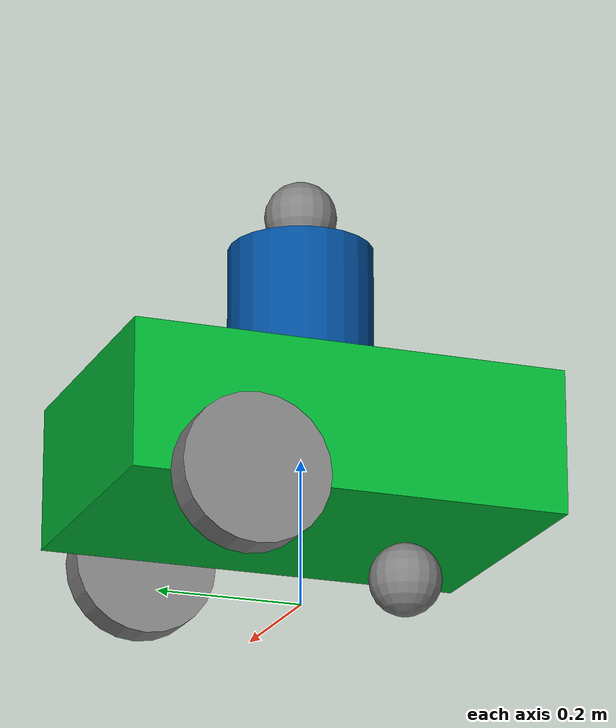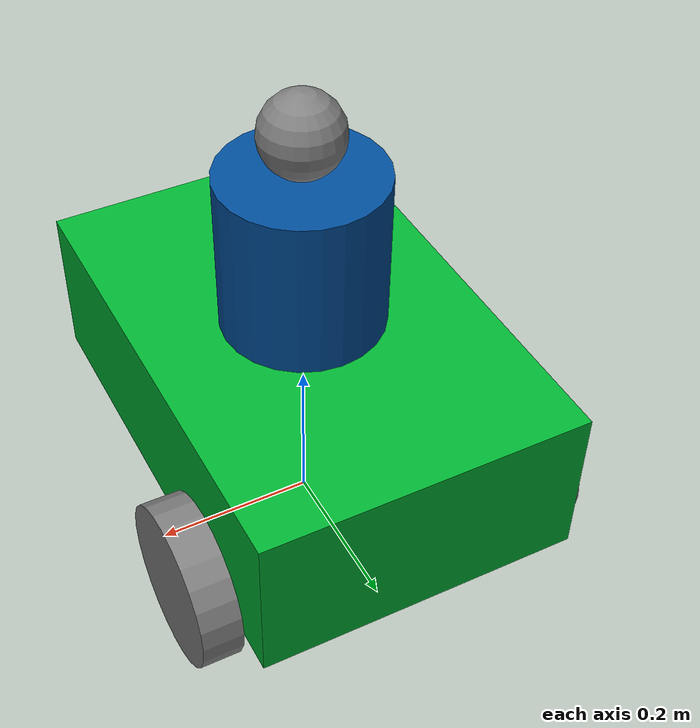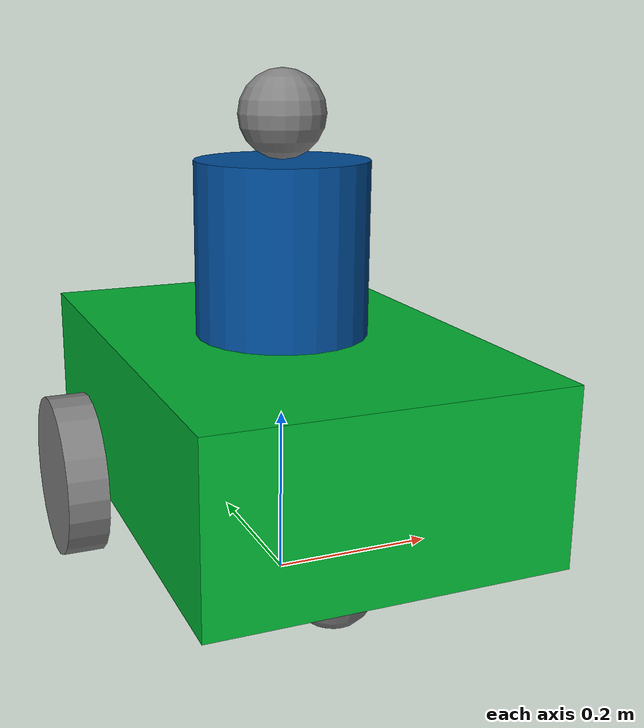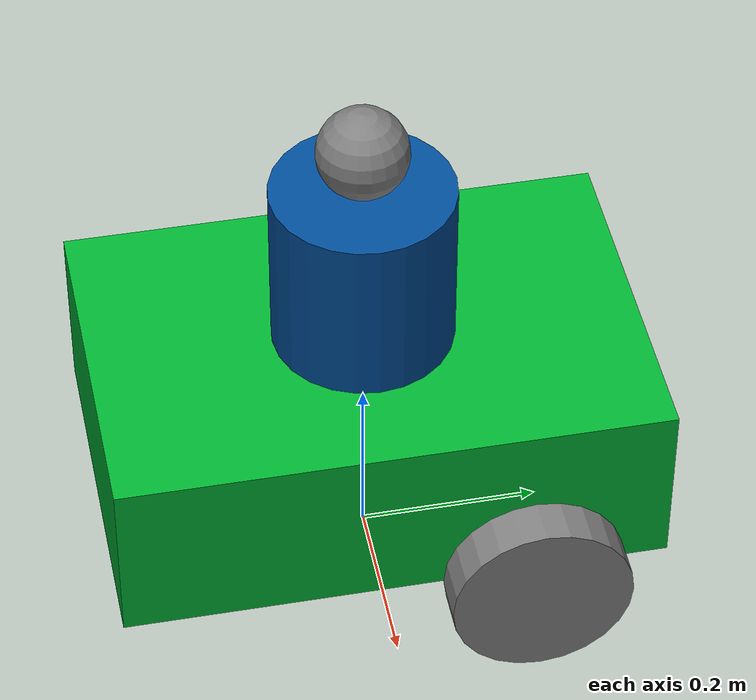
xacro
<?xml version="1.0"?>
<robot name="mobile_robot" xmlns:xacro="http://www.ros.org/wiki/xacro">

    <xacro:include filename="$(find my_robot_description)/urdf/common_properties.urdf.xacro" />
    <xacro:include filename="$(find my_robot_description)/urdf/mobile_base_gazebo.xacro" />

    <xacro:property name="box_size_length" value="0.4" />
    <xacro:property name="box_size_width" value="0.6" />
    <xacro:property name="box_size_height" value="0.2" />
    <xacro:property name="cylinder_radius" value="0.1" />
    <xacro:property name="cylinder_length" value="0.2" />
    <xacro:property name="sphere_radius" value="0.05" />

    <link name="basefoot_link" />

    <link name="base_link">
        <visual>
            <geometry>

                <box size="${box_size_length} ${box_size_width} ${box_size_height}" />

            </geometry>
            <origin xyz="0 0 ${box_size_height/2}" rpy=" 0 0 0" />

            <material name="green" />
        </visual>

        <collision>

            <geometry>

                <box size="${box_size_length} ${box_size_width} ${box_size_height}" />

            </geometry>
            <origin xyz="0 0 ${box_size_height/2}" rpy=" 0 0 0" />

        </collision>

        <xacro:box_inertia mass ="7.0" length="${box_size_length}" width="${box_size_width}" height="${box_size_height}"
                            xyz="0 0 ${box_size_height/2}" rpy="0 0 0" />
    </link>

    <link name="body_link">
        <visual>
            <geometry>

                <cylinder radius="${cylinder_radius}" length="${cylinder_length}" />

            </geometry>

            <origin xyz="0 0 ${cylinder_length/2}" rpy="0 0 0" />

            <material name="blue" />
        </visual>

        <collision>

            <geometry>

                <cylinder radius="${cylinder_radius}" length="${cylinder_length}" />

            </geometry>

            <origin xyz="0 0 ${cylinder_length/2}" rpy="0 0 0" />

        </collision>

        <xacro:cylinder_inertia mass="2.0" radius="${cylinder_radius}" length="${cylinder_length}"
                                xyz="0 0 ${cylinder_length/2}" rpy="0 0 0" />
    </link>

    <xacro:macro name="sphere_macro" params="prefix radius">
        <link name="${prefix}_link">
            <visual>
                <geometry>

                    <sphere radius="${radius}" />

                </geometry>

                <origin xyz="0 0 ${radius}" rpy="0 0 0" />

                <material name="gray" />
            </visual>

            <collision>

                <geometry>

                    <sphere radius="${radius}" />

                </geometry>

                <origin xyz="0 0 ${radius}" rpy="0 0 0" />

            </collision>

            <xacro:sphere_inertia mass="1.0" radius="${radius}"
                                  xyz="0 0 ${radius}" rpy="0 0 0" />
        </link>
    </xacro:macro>

    <xacro:sphere_macro prefix="head" radius="${sphere_radius}" />

    <xacro:macro name="wheel_macro" params="prefix radius length">
        <link name="${prefix}_wheel_link">
            <visual>
                <geometry>

                    <cylinder radius="${radius}" length="${length}" />

                </geometry>

                <origin xyz="0 0 0" rpy="0 ${pi/2} 0" />

                <material name="gray" />
            </visual>

            <collision>

                <geometry>

                    <cylinder radius="${radius}" length="${length}" />

                </geometry>

                <origin xyz="0 0 0" rpy="0 ${pi/2} 0" />

            </collision>

            <xacro:cylinder_inertia mass="1.0" radius="${radius}" length="${length}"
                                    xyz="0 0 0" rpy="0 ${pi/2} 0" />
        </link>
    </xacro:macro>

    <xacro:wheel_macro prefix="right" radius="${cylinder_radius}" length="0.05" />
    <xacro:wheel_macro prefix="left" radius="${cylinder_radius}" length="0.05" />

    <link name="caster_wheel_link">

        <visual>

            <geometry>

                <sphere radius="${sphere_radius}" />

            </geometry>
            <origin xyz="0 0 0" rpy="0 0 0 " />

            <material name="gray" />

        </visual>

        <collision>

            <geometry>

                <sphere radius="${sphere_radius}" />

            </geometry>
            <origin xyz="0 0 0" rpy="0 0 0 " />

        </collision>

        <xacro:sphere_inertia mass="0.5" radius="${sphere_radius}"
                                  xyz="0 0 ${sphere_radius}" rpy="0 0 0" />

    </link>

    <joint name="basefoot_base_joint" type="fixed">
        <parent link="basefoot_link" />
        <child link="base_link" />
        <origin xyz="0 0 ${box_size_height/2}" rpy="0 0 0" />
    </joint>

    <joint name="base_body_joint" type="fixed">
        <parent link="base_link" />
        <child link="body_link" />
        <origin xyz="0 0 ${box_size_height}" rpy="0 0 0" />
    </joint>

    <joint name="body_head_joint" type="revolute">
        <parent link="body_link" />
        <child link="head_link" />
        <origin xyz="0 0 ${cylinder_length}" rpy="0 0 0" />
        <axis xyz="0 0 1" />
        <limit lower="${-pi/2}" upper="${pi/2}" effort="100" velocity="100" />
    </joint>

    <joint name="base_right_wheel_joint" type="continuous">
        <parent link="base_link" />
        <child link="right_wheel_link" />
        <origin xyz="${box_size_length/2 + 0.025} ${box_size_width/4} 0" rpy="0 0 0" />
        <axis xyz="1 0 0" />
    </joint>

    <joint name="base_left_wheel_joint" type="continuous">
        <parent link="base_link" />
        <child link="left_wheel_link" />
        <origin xyz="-${box_size_length/2 + 0.025} ${box_size_width/4} 0" rpy="0 0 0" />
        <axis xyz="1 0 0" />
    </joint>

    <joint name="caster_wheel_joint" type="continuous">
        <parent link="base_link" />
        <child link="caster_wheel_link" />
        <origin xyz="0 ${-box_size_width/4} ${-sphere_radius}" rpy="0 0 0" />
        <axis xyz="1 0 0" />
    </joint>

</robot>

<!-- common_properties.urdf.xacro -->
<robot xmlns:xacro="http://www.ros.org/wiki/xacro" >

    <material name="gray">
        <color rgba="0.5 0.5 0.5 1" />
    </material>

    <material name="blue">
        <color rgba="0 0.3 0.6 1" />
    </material>

    <material name="green">
        <color rgba="0 0.7 0.2 1" />
    </material>

    <xacro:macro name="box_inertia" params ="mass length width height xyz rpy">
        <inertial>
            <origin xyz="${xyz}" rpy="${rpy}" />
            <mass value="${mass}" />
            <inertia
                ixx="${(1/12)*mass*(height*height + length*length)}"
                ixy="0.0"
                ixz="0.0"
                iyy="${(1/12)*mass*(width*width + length*length)}"
                iyz="0.0"
                izz="${(1/12)*mass*(width*width + height*height)}" />
        </inertial>
    </xacro:macro>

    <xacro:macro name="cylinder_inertia" params="mass radius length xyz rpy">
        <inertial>
            <origin xyz="${xyz}" rpy="${rpy}" />
            <mass value="${mass}" />
            <inertia
                ixx="${(1/12)*mass*(3*radius*radius + length*length)}"
                ixy="0.0"
                ixz="0.0"
                iyy="${(1/12)*mass*(3*radius*radius + length*length)}"
                iyz="0.0"
                izz="${(1/2)*mass*radius*radius}" />
        </inertial>
    </xacro:macro>

    <xacro:macro name="sphere_inertia" params="mass radius xyz rpy">
        <inertial>
            <origin xyz="${xyz}" rpy="${rpy}" />
            <mass value="${mass}" />
            <inertia
                ixx="${(2/5)*mass*radius*radius}"
                ixy="0.0"
                ixz="0.0"
                iyy="${(2/5)*mass*radius*radius}"
                iyz="0.0"
                izz="${(2/5)*mass*radius*radius}" />
        </inertial>
    </xacro:macro>

</robot>
